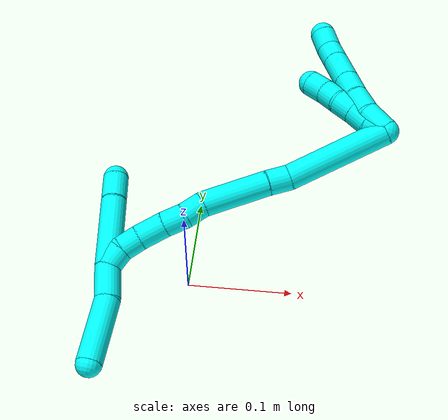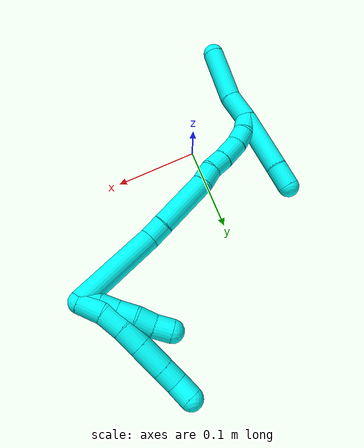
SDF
<sdf version="1.7">
 <world name="default">
  <model name="3">
   <static>0</static>
   <link name="3">
    <collision name="collision-cylinder-e_1_2_8">
     <pose>-0.010846 -0.002066 0.008211 0.246526 -0.907973 -0.120766</pose>
     <geometry><cylinder><radius>0.0125</radius><length>0.02752</length></cylinder></geometry>
     <surface>
      <friction><ode><mu>1.16</mu><mu2>1.16</mu2><slip1>0</slip1><slip2>0</slip2></ode></friction>
      <contact><ode><kp>1e+06</kp><kd>1</kd><max_vel>0</max_vel><min_depth>0.001</min_depth></ode></contact>
     </surface>
    </collision>
    <visual name="visual-cylinder-e_1_2_8">
     <pose>-0.010846 -0.002066 0.008211 0.246526 -0.907973 -0.120766</pose>
     <geometry><cylinder><radius>0.0125</radius><length>0.02752</length></cylinder></geometry>
     <material><ambient>0.003922 1 0.996078 1</ambient></material>
    </visual>
    <collision name="collision-cylinder-e_2_8_9">
     <pose>-0.030323 -0.003025 0.025384 -0.122949 -0.76275 0.049356</pose>
     <geometry><cylinder><radius>0.0125</radius><length>0.024981</length></cylinder></geometry>
     <surface>
      <friction><ode><mu>1.16</mu><mu2>1.16</mu2><slip1>0</slip1><slip2>0</slip2></ode></friction>
      <contact><ode><kp>1e+06</kp><kd>1</kd><max_vel>0</max_vel><min_depth>0.001</min_depth></ode></contact>
     </surface>
    </collision>
    <visual name="visual-cylinder-e_2_8_9">
     <pose>-0.030323 -0.003025 0.025384 -0.122949 -0.76275 0.049356</pose>
     <geometry><cylinder><radius>0.0125</radius><length>0.024981</length></cylinder></geometry>
     <material><ambient>0.003922 1 0.996078 1</ambient></material>
    </visual>
    <collision name="collision-cylinder-e_3_9_10">
     <pose>-0.046822 0.000597 0.043306 -0.273605 -0.701935 0.100718</pose>
     <geometry><cylinder><radius>0.0125</radius><length>0.024376</length></cylinder></geometry>
     <surface>
      <friction><ode><mu>1.16</mu><mu2>1.16</mu2><slip1>0</slip1><slip2>0</slip2></ode></friction>
      <contact><ode><kp>1e+06</kp><kd>1</kd><max_vel>0</max_vel><min_depth>0.001</min_depth></ode></contact>
     </surface>
    </collision>
    <visual name="visual-cylinder-e_3_9_10">
     <pose>-0.046822 0.000597 0.043306 -0.273605 -0.701935 0.100718</pose>
     <geometry><cylinder><radius>0.0125</radius><length>0.024376</length></cylinder></geometry>
     <material><ambient>0.003922 1 0.996078 1</ambient></material>
    </visual>
    <collision name="collision-cylinder-e_4_10_11">
     <pose>-0.065039 0.006491 0.063918 -0.282316 -0.706165 0.104642</pose>
     <geometry><cylinder><radius>0.0125</radius><length>0.03189</length></cylinder></geometry>
     <surface>
      <friction><ode><mu>1.16</mu><mu2>1.16</mu2><slip1>0</slip1><slip2>0</slip2></ode></friction>
      <contact><ode><kp>1e+06</kp><kd>1</kd><max_vel>0</max_vel><min_depth>0.001</min_depth></ode></contact>
     </surface>
    </collision>
    <visual name="visual-cylinder-e_4_10_11">
     <pose>-0.065039 0.006491 0.063918 -0.282316 -0.706165 0.104642</pose>
     <geometry><cylinder><radius>0.0125</radius><length>0.03189</length></cylinder></geometry>
     <material><ambient>0.003922 1 0.996078 1</ambient></material>
    </visual>
    <collision name="collision-cylinder-e_5_11_12">
     <pose>-0.08192 0.011999 0.082975 -0.279824 -0.703384 0.103264</pose>
     <geometry><cylinder><radius>0.0125</radius><length>0.020204</length></cylinder></geometry>
     <surface>
      <friction><ode><mu>1.16</mu><mu2>1.16</mu2><slip1>0</slip1><slip2>0</slip2></ode></friction>
      <contact><ode><kp>1e+06</kp><kd>1</kd><max_vel>0</max_vel><min_depth>0.001</min_depth></ode></contact>
     </surface>
    </collision>
    <visual name="visual-cylinder-e_5_11_12">
     <pose>-0.08192 0.011999 0.082975 -0.279824 -0.703384 0.103264</pose>
     <geometry><cylinder><radius>0.0125</radius><length>0.020204</length></cylinder></geometry>
     <material><ambient>0.003922 1 0.996078 1</ambient></material>
    </visual>
    <collision name="collision-cylinder-e_6_12_6">
     <pose>-0.094253 0.014346 0.099148 -0.024947 -0.584114 0.007501</pose>
     <geometry><cylinder><radius>0.0125</radius><length>0.021029</length></cylinder></geometry>
     <surface>
      <friction><ode><mu>1.16</mu><mu2>1.16</mu2><slip1>0</slip1><slip2>0</slip2></ode></friction>
      <contact><ode><kp>1e+06</kp><kd>1</kd><max_vel>0</max_vel><min_depth>0.001</min_depth></ode></contact>
     </surface>
    </collision>
    <visual name="visual-cylinder-e_6_12_6">
     <pose>-0.094253 0.014346 0.099148 -0.024947 -0.584114 0.007501</pose>
     <geometry><cylinder><radius>0.0125</radius><length>0.021029</length></cylinder></geometry>
     <material><ambient>0.003922 1 0.996078 1</ambient></material>
    </visual>
    <collision name="collision-cylinder-e_1_2_13">
     <pose>-0.009407 -0.001168 0.003185 0.351448 -1.22471 -0.248159</pose>
     <geometry><cylinder><radius>0.0125</radius><length>0.02</length></cylinder></geometry>
     <surface>
      <friction><ode><mu>1.16</mu><mu2>1.16</mu2><slip1>0</slip1><slip2>0</slip2></ode></friction>
      <contact><ode><kp>1e+06</kp><kd>1</kd><max_vel>0</max_vel><min_depth>0.001</min_depth></ode></contact>
     </surface>
    </collision>
    <visual name="visual-cylinder-e_1_2_13">
     <pose>-0.009407 -0.001168 0.003185 0.351448 -1.22471 -0.248159</pose>
     <geometry><cylinder><radius>0.0125</radius><length>0.02</length></cylinder></geometry>
     <material><ambient>0.003922 1 0.996078 1</ambient></material>
    </visual>
    <collision name="collision-cylinder-e_2_13_14">
     <pose>-0.027172 -0.003589 0.011715 0.230248 -0.989595 -0.124624</pose>
     <geometry><cylinder><radius>0.0125</radius><length>0.02</length></cylinder></geometry>
     <surface>
      <friction><ode><mu>1.16</mu><mu2>1.16</mu2><slip1>0</slip1><slip2>0</slip2></ode></friction>
      <contact><ode><kp>1e+06</kp><kd>1</kd><max_vel>0</max_vel><min_depth>0.001</min_depth></ode></contact>
     </surface>
    </collision>
    <visual name="visual-cylinder-e_2_13_14">
     <pose>-0.027172 -0.003589 0.011715 0.230248 -0.989595 -0.124624</pose>
     <geometry><cylinder><radius>0.0125</radius><length>0.02</length></cylinder></geometry>
     <material><ambient>0.003922 1 0.996078 1</ambient></material>
    </visual>
    <collision name="collision-cylinder-e_3_14_15">
     <pose>-0.044215 -0.006277 0.021805 0.293759 -1.05218 -0.171394</pose>
     <geometry><cylinder><radius>0.0125</radius><length>0.02</length></cylinder></geometry>
     <surface>
      <friction><ode><mu>1.16</mu><mu2>1.16</mu2><slip1>0</slip1><slip2>0</slip2></ode></friction>
      <contact><ode><kp>1e+06</kp><kd>1</kd><max_vel>0</max_vel><min_depth>0.001</min_depth></ode></contact>
     </surface>
    </collision>
    <visual name="visual-cylinder-e_3_14_15">
     <pose>-0.044215 -0.006277 0.021805 0.293759 -1.05218 -0.171394</pose>
     <geometry><cylinder><radius>0.0125</radius><length>0.02</length></cylinder></geometry>
     <material><ambient>0.003922 1 0.996078 1</ambient></material>
    </visual>
    <collision name="collision-cylinder-e_4_15_16">
     <pose>-0.061513 -0.006888 0.031564 -0.162929 -1.03768 0.093175</pose>
     <geometry><cylinder><radius>0.0125</radius><length>0.02</length></cylinder></geometry>
     <surface>
      <friction><ode><mu>1.16</mu><mu2>1.16</mu2><slip1>0</slip1><slip2>0</slip2></ode></friction>
      <contact><ode><kp>1e+06</kp><kd>1</kd><max_vel>0</max_vel><min_depth>0.001</min_depth></ode></contact>
     </surface>
    </collision>
    <visual name="visual-cylinder-e_4_15_16">
     <pose>-0.061513 -0.006888 0.031564 -0.162929 -1.03768 0.093175</pose>
     <geometry><cylinder><radius>0.0125</radius><length>0.02</length></cylinder></geometry>
     <material><ambient>0.003922 1 0.996078 1</ambient></material>
    </visual>
    <collision name="collision-cylinder-e_5_16_5">
     <pose>-0.079147 -0.006992 0.04079 0.216979 -1.12497 -0.137111</pose>
     <geometry><cylinder><radius>0.0125</radius><length>0.02</length></cylinder></geometry>
     <surface>
      <friction><ode><mu>1.16</mu><mu2>1.16</mu2><slip1>0</slip1><slip2>0</slip2></ode></friction>
      <contact><ode><kp>1e+06</kp><kd>1</kd><max_vel>0</max_vel><min_depth>0.001</min_depth></ode></contact>
     </surface>
    </collision>
    <visual name="visual-cylinder-e_5_16_5">
     <pose>-0.079147 -0.006992 0.04079 0.216979 -1.12497 -0.137111</pose>
     <geometry><cylinder><radius>0.0125</radius><length>0.02</length></cylinder></geometry>
     <material><ambient>0.003922 1 0.996078 1</ambient></material>
    </visual>
    <collision name="collision-cylinder-e_1_2_17">
     <pose>-0.039798 -0.012944 -0.029437 2.72732 -0.891198 -2.31261</pose>
     <geometry><cylinder><radius>0.0125</radius><length>0.102332</length></cylinder></geometry>
     <surface>
      <friction><ode><mu>1.16</mu><mu2>1.16</mu2><slip1>0</slip1><slip2>0</slip2></ode></friction>
      <contact><ode><kp>1e+06</kp><kd>1</kd><max_vel>0</max_vel><min_depth>0.001</min_depth></ode></contact>
     </surface>
    </collision>
    <visual name="visual-cylinder-e_1_2_17">
     <pose>-0.039798 -0.012944 -0.029437 2.72732 -0.891198 -2.31261</pose>
     <geometry><cylinder><radius>0.0125</radius><length>0.102332</length></cylinder></geometry>
     <material><ambient>0.003922 1 0.996078 1</ambient></material>
    </visual>
    <collision name="collision-cylinder-e_2_17_18">
     <pose>-0.087323 -0.032159 -0.064217 2.27652 -0.753319 -1.41677</pose>
     <geometry><cylinder><radius>0.0125</radius><length>0.022591</length></cylinder></geometry>
     <surface>
      <friction><ode><mu>1.16</mu><mu2>1.16</mu2><slip1>0</slip1><slip2>0</slip2></ode></friction>
      <contact><ode><kp>1e+06</kp><kd>1</kd><max_vel>0</max_vel><min_depth>0.001</min_depth></ode></contact>
     </surface>
    </collision>
    <visual name="visual-cylinder-e_2_17_18">
     <pose>-0.087323 -0.032159 -0.064217 2.27652 -0.753319 -1.41677</pose>
     <geometry><cylinder><radius>0.0125</radius><length>0.022591</length></cylinder></geometry>
     <material><ambient>0.003922 1 0.996078 1</ambient></material>
    </visual>
    <collision name="collision-cylinder-e_3_18_19">
     <pose>-0.117896 -0.054381 -0.086408 2.38349 -0.777707 -1.59902</pose>
     <geometry><cylinder><radius>0.0125</radius><length>0.065121</length></cylinder></geometry>
     <surface>
      <friction><ode><mu>1.16</mu><mu2>1.16</mu2><slip1>0</slip1><slip2>0</slip2></ode></friction>
      <contact><ode><kp>1e+06</kp><kd>1</kd><max_vel>0</max_vel><min_depth>0.001</min_depth></ode></contact>
     </surface>
    </collision>
    <visual name="visual-cylinder-e_3_18_19">
     <pose>-0.117896 -0.054381 -0.086408 2.38349 -0.777707 -1.59902</pose>
     <geometry><cylinder><radius>0.0125</radius><length>0.065121</length></cylinder></geometry>
     <material><ambient>0.003922 1 0.996078 1</ambient></material>
    </visual>
    <collision name="collision-cylinder-e_4_19_20">
     <pose>-0.146801 -0.074293 -0.110554 2.6445 -0.630273 -1.81859</pose>
     <geometry><cylinder><radius>0.0125</radius><length>0.020559</length></cylinder></geometry>
     <surface>
      <friction><ode><mu>1.16</mu><mu2>1.16</mu2><slip1>0</slip1><slip2>0</slip2></ode></friction>
      <contact><ode><kp>1e+06</kp><kd>1</kd><max_vel>0</max_vel><min_depth>0.001</min_depth></ode></contact>
     </surface>
    </collision>
    <visual name="visual-cylinder-e_4_19_20">
     <pose>-0.146801 -0.074293 -0.110554 2.6445 -0.630273 -1.81859</pose>
     <geometry><cylinder><radius>0.0125</radius><length>0.020559</length></cylinder></geometry>
     <material><ambient>0.003922 1 0.996078 1</ambient></material>
    </visual>
    <collision name="collision-cylinder-e_5_20_21">
     <pose>-0.161036 -0.081196 -0.123538 2.66395 -0.906578 -2.21459</pose>
     <geometry><cylinder><radius>0.0125</radius><length>0.020769</length></cylinder></geometry>
     <surface>
      <friction><ode><mu>1.16</mu><mu2>1.16</mu2><slip1>0</slip1><slip2>0</slip2></ode></friction>
      <contact><ode><kp>1e+06</kp><kd>1</kd><max_vel>0</max_vel><min_depth>0.001</min_depth></ode></contact>
     </surface>
    </collision>
    <visual name="visual-cylinder-e_5_20_21">
     <pose>-0.161036 -0.081196 -0.123538 2.66395 -0.906578 -2.21459</pose>
     <geometry><cylinder><radius>0.0125</radius><length>0.020769</length></cylinder></geometry>
     <material><ambient>0.003922 1 0.996078 1</ambient></material>
    </visual>
    <collision name="collision-cylinder-e_6_21_22">
     <pose>-0.179199 -0.088327 -0.137904 2.69198 -0.803122 -2.15363</pose>
     <geometry><cylinder><radius>0.0125</radius><length>0.027758</length></cylinder></geometry>
     <surface>
      <friction><ode><mu>1.16</mu><mu2>1.16</mu2><slip1>0</slip1><slip2>0</slip2></ode></friction>
      <contact><ode><kp>1e+06</kp><kd>1</kd><max_vel>0</max_vel><min_depth>0.001</min_depth></ode></contact>
     </surface>
    </collision>
    <visual name="visual-cylinder-e_6_21_22">
     <pose>-0.179199 -0.088327 -0.137904 2.69198 -0.803122 -2.15363</pose>
     <geometry><cylinder><radius>0.0125</radius><length>0.027758</length></cylinder></geometry>
     <material><ambient>0.003922 1 0.996078 1</ambient></material>
    </visual>
    <collision name="collision-cylinder-e_7_22_23">
     <pose>-0.194883 -0.096625 -0.153773 2.62236 -0.602687 -1.7273</pose>
     <geometry><cylinder><radius>0.0125</radius><length>0.020103</length></cylinder></geometry>
     <surface>
      <friction><ode><mu>1.16</mu><mu2>1.16</mu2><slip1>0</slip1><slip2>0</slip2></ode></friction>
      <contact><ode><kp>1e+06</kp><kd>1</kd><max_vel>0</max_vel><min_depth>0.001</min_depth></ode></contact>
     </surface>
    </collision>
    <visual name="visual-cylinder-e_7_22_23">
     <pose>-0.194883 -0.096625 -0.153773 2.62236 -0.602687 -1.7273</pose>
     <geometry><cylinder><radius>0.0125</radius><length>0.020103</length></cylinder></geometry>
     <material><ambient>0.003922 1 0.996078 1</ambient></material>
    </visual>
    <collision name="collision-cylinder-e_8_23_1">
     <pose>-0.204445 -0.102834 -0.170369 2.92193 -0.381309 -2.10339</pose>
     <geometry><cylinder><radius>0.0125</radius><length>0.020767</length></cylinder></geometry>
     <surface>
      <friction><ode><mu>1.16</mu><mu2>1.16</mu2><slip1>0</slip1><slip2>0</slip2></ode></friction>
      <contact><ode><kp>1e+06</kp><kd>1</kd><max_vel>0</max_vel><min_depth>0.001</min_depth></ode></contact>
     </surface>
    </collision>
    <visual name="visual-cylinder-e_8_23_1">
     <pose>-0.204445 -0.102834 -0.170369 2.92193 -0.381309 -2.10339</pose>
     <geometry><cylinder><radius>0.0125</radius><length>0.020767</length></cylinder></geometry>
     <material><ambient>0.003922 1 0.996078 1</ambient></material>
    </visual>
    <collision name="collision-cylinder-e_1_1_24">
     <pose>-0.22007 -0.09829 -0.146137 -0.195023 -0.330434 0.032618</pose>
     <geometry><cylinder><radius>0.0125</radius><length>0.072499</length></cylinder></geometry>
     <surface>
      <friction><ode><mu>1.16</mu><mu2>1.16</mu2><slip1>0</slip1><slip2>0</slip2></ode></friction>
      <contact><ode><kp>1e+06</kp><kd>1</kd><max_vel>0</max_vel><min_depth>0.001</min_depth></ode></contact>
     </surface>
    </collision>
    <visual name="visual-cylinder-e_1_1_24">
     <pose>-0.22007 -0.09829 -0.146137 -0.195023 -0.330434 0.032618</pose>
     <geometry><cylinder><radius>0.0125</radius><length>0.072499</length></cylinder></geometry>
     <material><ambient>0.003922 1 0.996078 1</ambient></material>
    </visual>
    <collision name="collision-cylinder-e_2_24_4">
     <pose>-0.236993 -0.088235 -0.100218 -0.270862 -0.384803 0.053079</pose>
     <geometry><cylinder><radius>0.0125</radius><length>0.027501</length></cylinder></geometry>
     <surface>
      <friction><ode><mu>1.16</mu><mu2>1.16</mu2><slip1>0</slip1><slip2>0</slip2></ode></friction>
      <contact><ode><kp>1e+06</kp><kd>1</kd><max_vel>0</max_vel><min_depth>0.001</min_depth></ode></contact>
     </surface>
    </collision>
    <visual name="visual-cylinder-e_2_24_4">
     <pose>-0.236993 -0.088235 -0.100218 -0.270862 -0.384803 0.053079</pose>
     <geometry><cylinder><radius>0.0125</radius><length>0.027501</length></cylinder></geometry>
     <material><ambient>0.003922 1 0.996078 1</ambient></material>
    </visual>
    <collision name="collision-cylinder-e_1_1_25">
     <pose>-0.201828 -0.107242 -0.195512 2.99601 0.386913 2.42893</pose>
     <geometry><cylinder><radius>0.0125</radius><length>0.034349</length></cylinder></geometry>
     <surface>
      <friction><ode><mu>1.16</mu><mu2>1.16</mu2><slip1>0</slip1><slip2>0</slip2></ode></friction>
      <contact><ode><kp>1e+06</kp><kd>1</kd><max_vel>0</max_vel><min_depth>0.001</min_depth></ode></contact>
     </surface>
    </collision>
    <visual name="visual-cylinder-e_1_1_25">
     <pose>-0.201828 -0.107242 -0.195512 2.99601 0.386913 2.42893</pose>
     <geometry><cylinder><radius>0.0125</radius><length>0.034349</length></cylinder></geometry>
     <material><ambient>0.003922 1 0.996078 1</ambient></material>
    </visual>
    <collision name="collision-cylinder-e_2_25_3">
     <pose>-0.188848 -0.119448 -0.241863 2.82885 0.199327 1.13044</pose>
     <geometry><cylinder><radius>0.0125</radius><length>0.065651</length></cylinder></geometry>
     <surface>
      <friction><ode><mu>1.16</mu><mu2>1.16</mu2><slip1>0</slip1><slip2>0</slip2></ode></friction>
      <contact><ode><kp>1e+06</kp><kd>1</kd><max_vel>0</max_vel><min_depth>0.001</min_depth></ode></contact>
     </surface>
    </collision>
    <visual name="visual-cylinder-e_2_25_3">
     <pose>-0.188848 -0.119448 -0.241863 2.82885 0.199327 1.13044</pose>
     <geometry><cylinder><radius>0.0125</radius><length>0.065651</length></cylinder></geometry>
     <material><ambient>0.003922 1 0.996078 1</ambient></material>
    </visual>
    <collision name="collision-sphere-3">
     <pose>-0.182348 -0.129348 -0.272478 0 -0 0</pose>
     <geometry><sphere><radius>0.0125</radius></sphere></geometry>
     <surface>
      <friction><ode><mu>1.16</mu><mu2>1.16</mu2><slip1>0</slip1><slip2>0</slip2></ode></friction>
      <contact><ode><kp>1e+06</kp><kd>1</kd><max_vel>0</max_vel><min_depth>0.001</min_depth></ode></contact>
     </surface>
    </collision>
    <visual name="visual-sphere-3">
     <pose>-0.182348 -0.129348 -0.272478 0 -0 0</pose>
     <geometry><sphere><radius>0.0125</radius></sphere></geometry>
     <material><ambient>0.003922 1 0.996078 1</ambient></material>
    </visual>
    <collision name="collision-sphere-25">
     <pose>-0.195348 -0.109549 -0.211248 0 -0 0</pose>
     <geometry><sphere><radius>0.0125</radius></sphere></geometry>
     <surface>
      <friction><ode><mu>1.16</mu><mu2>1.16</mu2><slip1>0</slip1><slip2>0</slip2></ode></friction>
      <contact><ode><kp>1e+06</kp><kd>1</kd><max_vel>0</max_vel><min_depth>0.001</min_depth></ode></contact>
     </surface>
    </collision>
    <visual name="visual-sphere-25">
     <pose>-0.195348 -0.109549 -0.211248 0 -0 0</pose>
     <geometry><sphere><radius>0.0125</radius></sphere></geometry>
     <material><ambient>0.003922 1 0.996078 1</ambient></material>
    </visual>
    <collision name="collision-sphere-4">
     <pose>-0.242155 -0.084825 -0.087937 0 -0 0</pose>
     <geometry><sphere><radius>0.0125</radius></sphere></geometry>
     <surface>
      <friction><ode><mu>1.16</mu><mu2>1.16</mu2><slip1>0</slip1><slip2>0</slip2></ode></friction>
      <contact><ode><kp>1e+06</kp><kd>1</kd><max_vel>0</max_vel><min_depth>0.001</min_depth></ode></contact>
     </surface>
    </collision>
    <visual name="visual-sphere-4">
     <pose>-0.242155 -0.084825 -0.087937 0 -0 0</pose>
     <geometry><sphere><radius>0.0125</radius></sphere></geometry>
     <material><ambient>0.003922 1 0.996078 1</ambient></material>
    </visual>
    <collision name="collision-sphere-24">
     <pose>-0.231831 -0.091645 -0.112498 0 -0 0</pose>
     <geometry><sphere><radius>0.0125</radius></sphere></geometry>
     <surface>
      <friction><ode><mu>1.16</mu><mu2>1.16</mu2><slip1>0</slip1><slip2>0</slip2></ode></friction>
      <contact><ode><kp>1e+06</kp><kd>1</kd><max_vel>0</max_vel><min_depth>0.001</min_depth></ode></contact>
     </surface>
    </collision>
    <visual name="visual-sphere-24">
     <pose>-0.231831 -0.091645 -0.112498 0 -0 0</pose>
     <geometry><sphere><radius>0.0125</radius></sphere></geometry>
     <material><ambient>0.003922 1 0.996078 1</ambient></material>
    </visual>
    <collision name="collision-sphere-1">
     <pose>-0.208309 -0.104934 -0.179775 0 -0 0</pose>
     <geometry><sphere><radius>0.0125</radius></sphere></geometry>
     <surface>
      <friction><ode><mu>1.16</mu><mu2>1.16</mu2><slip1>0</slip1><slip2>0</slip2></ode></friction>
      <contact><ode><kp>1e+06</kp><kd>1</kd><max_vel>0</max_vel><min_depth>0.001</min_depth></ode></contact>
     </surface>
    </collision>
    <visual name="visual-sphere-1">
     <pose>-0.208309 -0.104934 -0.179775 0 -0 0</pose>
     <geometry><sphere><radius>0.0125</radius></sphere></geometry>
     <material><ambient>0.003922 1 0.996078 1</ambient></material>
    </visual>
    <collision name="collision-sphere-23">
     <pose>-0.200581 -0.100734 -0.160963 0 -0 0</pose>
     <geometry><sphere><radius>0.0125</radius></sphere></geometry>
     <surface>
      <friction><ode><mu>1.16</mu><mu2>1.16</mu2><slip1>0</slip1><slip2>0</slip2></ode></friction>
      <contact><ode><kp>1e+06</kp><kd>1</kd><max_vel>0</max_vel><min_depth>0.001</min_depth></ode></contact>
     </surface>
    </collision>
    <visual name="visual-sphere-23">
     <pose>-0.200581 -0.100734 -0.160963 0 -0 0</pose>
     <geometry><sphere><radius>0.0125</radius></sphere></geometry>
     <material><ambient>0.003922 1 0.996078 1</ambient></material>
    </visual>
    <collision name="collision-sphere-22">
     <pose>-0.189185 -0.092516 -0.146584 0 -0 0</pose>
     <geometry><sphere><radius>0.0125</radius></sphere></geometry>
     <surface>
      <friction><ode><mu>1.16</mu><mu2>1.16</mu2><slip1>0</slip1><slip2>0</slip2></ode></friction>
      <contact><ode><kp>1e+06</kp><kd>1</kd><max_vel>0</max_vel><min_depth>0.001</min_depth></ode></contact>
     </surface>
    </collision>
    <visual name="visual-sphere-22">
     <pose>-0.189185 -0.092516 -0.146584 0 -0 0</pose>
     <geometry><sphere><radius>0.0125</radius></sphere></geometry>
     <material><ambient>0.003922 1 0.996078 1</ambient></material>
    </visual>
    <collision name="collision-sphere-21">
     <pose>-0.169212 -0.084138 -0.129223 0 -0 0</pose>
     <geometry><sphere><radius>0.0125</radius></sphere></geometry>
     <surface>
      <friction><ode><mu>1.16</mu><mu2>1.16</mu2><slip1>0</slip1><slip2>0</slip2></ode></friction>
      <contact><ode><kp>1e+06</kp><kd>1</kd><max_vel>0</max_vel><min_depth>0.001</min_depth></ode></contact>
     </surface>
    </collision>
    <visual name="visual-sphere-21">
     <pose>-0.169212 -0.084138 -0.129223 0 -0 0</pose>
     <geometry><sphere><radius>0.0125</radius></sphere></geometry>
     <material><ambient>0.003922 1 0.996078 1</ambient></material>
    </visual>
    <collision name="collision-sphere-12">
     <pose>-0.088454 0.014127 0.090379 0 -0 0</pose>
     <geometry><sphere><radius>0.0125</radius></sphere></geometry>
     <surface>
      <friction><ode><mu>1.16</mu><mu2>1.16</mu2><slip1>0</slip1><slip2>0</slip2></ode></friction>
      <contact><ode><kp>1e+06</kp><kd>1</kd><max_vel>0</max_vel><min_depth>0.001</min_depth></ode></contact>
     </surface>
    </collision>
    <visual name="visual-sphere-12">
     <pose>-0.088454 0.014127 0.090379 0 -0 0</pose>
     <geometry><sphere><radius>0.0125</radius></sphere></geometry>
     <material><ambient>0.003922 1 0.996078 1</ambient></material>
    </visual>
    <collision name="collision-sphere-11">
     <pose>-0.075386 0.009871 0.07557 0 -0 0</pose>
     <geometry><sphere><radius>0.0125</radius></sphere></geometry>
     <surface>
      <friction><ode><mu>1.16</mu><mu2>1.16</mu2><slip1>0</slip1><slip2>0</slip2></ode></friction>
      <contact><ode><kp>1e+06</kp><kd>1</kd><max_vel>0</max_vel><min_depth>0.001</min_depth></ode></contact>
     </surface>
    </collision>
    <visual name="visual-sphere-11">
     <pose>-0.075386 0.009871 0.07557 0 -0 0</pose>
     <geometry><sphere><radius>0.0125</radius></sphere></geometry>
     <material><ambient>0.003922 1 0.996078 1</ambient></material>
    </visual>
    <collision name="collision-sphere-10">
     <pose>-0.054692 0.003112 0.052267 0 -0 0</pose>
     <geometry><sphere><radius>0.0125</radius></sphere></geometry>
     <surface>
      <friction><ode><mu>1.16</mu><mu2>1.16</mu2><slip1>0</slip1><slip2>0</slip2></ode></friction>
      <contact><ode><kp>1e+06</kp><kd>1</kd><max_vel>0</max_vel><min_depth>0.001</min_depth></ode></contact>
     </surface>
    </collision>
    <visual name="visual-sphere-10">
     <pose>-0.054692 0.003112 0.052267 0 -0 0</pose>
     <geometry><sphere><radius>0.0125</radius></sphere></geometry>
     <material><ambient>0.003922 1 0.996078 1</ambient></material>
    </visual>
    <collision name="collision-sphere-9">
     <pose>-0.038953 -0.001918 0.034346 0 -0 0</pose>
     <geometry><sphere><radius>0.0125</radius></sphere></geometry>
     <surface>
      <friction><ode><mu>1.16</mu><mu2>1.16</mu2><slip1>0</slip1><slip2>0</slip2></ode></friction>
      <contact><ode><kp>1e+06</kp><kd>1</kd><max_vel>0</max_vel><min_depth>0.001</min_depth></ode></contact>
     </surface>
    </collision>
    <visual name="visual-sphere-9">
     <pose>-0.038953 -0.001918 0.034346 0 -0 0</pose>
     <geometry><sphere><radius>0.0125</radius></sphere></geometry>
     <material><ambient>0.003922 1 0.996078 1</ambient></material>
    </visual>
    <collision name="collision-sphere-2">
     <geometry><sphere><radius>0.0125</radius></sphere></geometry>
     <surface>
      <friction><ode><mu>1.16</mu><mu2>1.16</mu2><slip1>0</slip1><slip2>0</slip2></ode></friction>
      <contact><ode><kp>1e+06</kp><kd>1</kd><max_vel>0</max_vel><min_depth>0.001</min_depth></ode></contact>
     </surface>
    </collision>
    <visual name="visual-sphere-2">
     <geometry><sphere><radius>0.0125</radius></sphere></geometry>
     <material><ambient>0.003922 1 0.996078 1</ambient></material>
    </visual>
    <collision name="collision-sphere-19">
     <pose>-0.140742 -0.070332 -0.103254 0 -0 0</pose>
     <geometry><sphere><radius>0.0125</radius></sphere></geometry>
     <surface>
      <friction><ode><mu>1.16</mu><mu2>1.16</mu2><slip1>0</slip1><slip2>0</slip2></ode></friction>
      <contact><ode><kp>1e+06</kp><kd>1</kd><max_vel>0</max_vel><min_depth>0.001</min_depth></ode></contact>
     </surface>
    </collision>
    <visual name="visual-sphere-19">
     <pose>-0.140742 -0.070332 -0.103254 0 -0 0</pose>
     <geometry><sphere><radius>0.0125</radius></sphere></geometry>
     <material><ambient>0.003922 1 0.996078 1</ambient></material>
    </visual>
    <collision name="collision-sphere-8">
     <pose>-0.021693 -0.004133 0.016422 0 -0 0</pose>
     <geometry><sphere><radius>0.0125</radius></sphere></geometry>
     <surface>
      <friction><ode><mu>1.16</mu><mu2>1.16</mu2><slip1>0</slip1><slip2>0</slip2></ode></friction>
      <contact><ode><kp>1e+06</kp><kd>1</kd><max_vel>0</max_vel><min_depth>0.001</min_depth></ode></contact>
     </surface>
    </collision>
    <visual name="visual-sphere-8">
     <pose>-0.021693 -0.004133 0.016422 0 -0 0</pose>
     <geometry><sphere><radius>0.0125</radius></sphere></geometry>
     <material><ambient>0.003922 1 0.996078 1</ambient></material>
    </visual>
    <collision name="collision-sphere-6">
     <pose>-0.100051 0.014564 0.107916 0 -0 0</pose>
     <geometry><sphere><radius>0.0125</radius></sphere></geometry>
     <surface>
      <friction><ode><mu>1.16</mu><mu2>1.16</mu2><slip1>0</slip1><slip2>0</slip2></ode></friction>
      <contact><ode><kp>1e+06</kp><kd>1</kd><max_vel>0</max_vel><min_depth>0.001</min_depth></ode></contact>
     </surface>
    </collision>
    <visual name="visual-sphere-6">
     <pose>-0.100051 0.014564 0.107916 0 -0 0</pose>
     <geometry><sphere><radius>0.0125</radius></sphere></geometry>
     <material><ambient>0.003922 1 0.996078 1</ambient></material>
    </visual>
    <collision name="collision-sphere-13">
     <pose>-0.018814 -0.002336 0.00637 0 -0 0</pose>
     <geometry><sphere><radius>0.0125</radius></sphere></geometry>
     <surface>
      <friction><ode><mu>1.16</mu><mu2>1.16</mu2><slip1>0</slip1><slip2>0</slip2></ode></friction>
      <contact><ode><kp>1e+06</kp><kd>1</kd><max_vel>0</max_vel><min_depth>0.001</min_depth></ode></contact>
     </surface>
    </collision>
    <visual name="visual-sphere-13">
     <pose>-0.018814 -0.002336 0.00637 0 -0 0</pose>
     <geometry><sphere><radius>0.0125</radius></sphere></geometry>
     <material><ambient>0.003922 1 0.996078 1</ambient></material>
    </visual>
    <collision name="collision-sphere-14">
     <pose>-0.03553 -0.004842 0.01706 0 -0 0</pose>
     <geometry><sphere><radius>0.0125</radius></sphere></geometry>
     <surface>
      <friction><ode><mu>1.16</mu><mu2>1.16</mu2><slip1>0</slip1><slip2>0</slip2></ode></friction>
      <contact><ode><kp>1e+06</kp><kd>1</kd><max_vel>0</max_vel><min_depth>0.001</min_depth></ode></contact>
     </surface>
    </collision>
    <visual name="visual-sphere-14">
     <pose>-0.03553 -0.004842 0.01706 0 -0 0</pose>
     <geometry><sphere><radius>0.0125</radius></sphere></geometry>
     <material><ambient>0.003922 1 0.996078 1</ambient></material>
    </visual>
    <collision name="collision-sphere-15">
     <pose>-0.0529 -0.007712 0.026549 0 -0 0</pose>
     <geometry><sphere><radius>0.0125</radius></sphere></geometry>
     <surface>
      <friction><ode><mu>1.16</mu><mu2>1.16</mu2><slip1>0</slip1><slip2>0</slip2></ode></friction>
      <contact><ode><kp>1e+06</kp><kd>1</kd><max_vel>0</max_vel><min_depth>0.001</min_depth></ode></contact>
     </surface>
    </collision>
    <visual name="visual-sphere-15">
     <pose>-0.0529 -0.007712 0.026549 0 -0 0</pose>
     <geometry><sphere><radius>0.0125</radius></sphere></geometry>
     <material><ambient>0.003922 1 0.996078 1</ambient></material>
    </visual>
    <collision name="collision-sphere-16">
     <pose>-0.070125 -0.006063 0.036579 0 -0 0</pose>
     <geometry><sphere><radius>0.0125</radius></sphere></geometry>
     <surface>
      <friction><ode><mu>1.16</mu><mu2>1.16</mu2><slip1>0</slip1><slip2>0</slip2></ode></friction>
      <contact><ode><kp>1e+06</kp><kd>1</kd><max_vel>0</max_vel><min_depth>0.001</min_depth></ode></contact>
     </surface>
    </collision>
    <visual name="visual-sphere-16">
     <pose>-0.070125 -0.006063 0.036579 0 -0 0</pose>
     <geometry><sphere><radius>0.0125</radius></sphere></geometry>
     <material><ambient>0.003922 1 0.996078 1</ambient></material>
    </visual>
    <collision name="collision-sphere-5">
     <pose>-0.08817 -0.00792 0.045001 0 -0 0</pose>
     <geometry><sphere><radius>0.0125</radius></sphere></geometry>
     <surface>
      <friction><ode><mu>1.16</mu><mu2>1.16</mu2><slip1>0</slip1><slip2>0</slip2></ode></friction>
      <contact><ode><kp>1e+06</kp><kd>1</kd><max_vel>0</max_vel><min_depth>0.001</min_depth></ode></contact>
     </surface>
    </collision>
    <visual name="visual-sphere-5">
     <pose>-0.08817 -0.00792 0.045001 0 -0 0</pose>
     <geometry><sphere><radius>0.0125</radius></sphere></geometry>
     <material><ambient>0.003922 1 0.996078 1</ambient></material>
    </visual>
    <collision name="collision-sphere-17">
     <pose>-0.079596 -0.025888 -0.058873 0 -0 0</pose>
     <geometry><sphere><radius>0.0125</radius></sphere></geometry>
     <surface>
      <friction><ode><mu>1.16</mu><mu2>1.16</mu2><slip1>0</slip1><slip2>0</slip2></ode></friction>
      <contact><ode><kp>1e+06</kp><kd>1</kd><max_vel>0</max_vel><min_depth>0.001</min_depth></ode></contact>
     </surface>
    </collision>
    <visual name="visual-sphere-17">
     <pose>-0.079596 -0.025888 -0.058873 0 -0 0</pose>
     <geometry><sphere><radius>0.0125</radius></sphere></geometry>
     <material><ambient>0.003922 1 0.996078 1</ambient></material>
    </visual>
    <collision name="collision-sphere-18">
     <pose>-0.09505 -0.03843 -0.069561 0 -0 0</pose>
     <geometry><sphere><radius>0.0125</radius></sphere></geometry>
     <surface>
      <friction><ode><mu>1.16</mu><mu2>1.16</mu2><slip1>0</slip1><slip2>0</slip2></ode></friction>
      <contact><ode><kp>1e+06</kp><kd>1</kd><max_vel>0</max_vel><min_depth>0.001</min_depth></ode></contact>
     </surface>
    </collision>
    <visual name="visual-sphere-18">
     <pose>-0.09505 -0.03843 -0.069561 0 -0 0</pose>
     <geometry><sphere><radius>0.0125</radius></sphere></geometry>
     <material><ambient>0.003922 1 0.996078 1</ambient></material>
    </visual>
    <collision name="collision-sphere-20">
     <pose>-0.152859 -0.078253 -0.117853 0 -0 0</pose>
     <geometry><sphere><radius>0.0125</radius></sphere></geometry>
     <surface>
      <friction><ode><mu>1.16</mu><mu2>1.16</mu2><slip1>0</slip1><slip2>0</slip2></ode></friction>
      <contact><ode><kp>1e+06</kp><kd>1</kd><max_vel>0</max_vel><min_depth>0.001</min_depth></ode></contact>
     </surface>
    </collision>
    <visual name="visual-sphere-20">
     <pose>-0.152859 -0.078253 -0.117853 0 -0 0</pose>
     <geometry><sphere><radius>0.0125</radius></sphere></geometry>
     <material><ambient>0.003922 1 0.996078 1</ambient></material>
    </visual>
    <inertial>
     <pose>-0.116485 -0.048372 -0.068579 0 -0 0</pose>
     <mass>0.75</mass>
     <inertia>
      <ixx>-5.9e-05</ixx>
      <ixy>0</ixy>
      <ixz>0</ixz>
      <iyy>0.000101</iyy>
      <iyz>0</iyz>
      <izz>0.000157</izz>
     </inertia>
    </inertial>
   </link>
   <pose>0.178407 0.120867 0.108626 -1.04179 -0.382265 -0.352457</pose>
  </model>
 </world>
</sdf>
